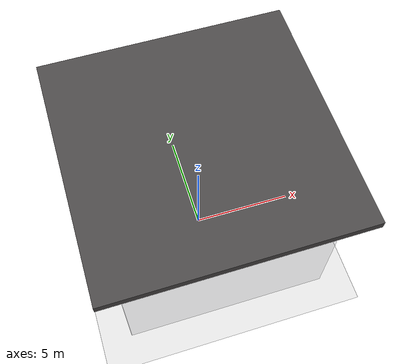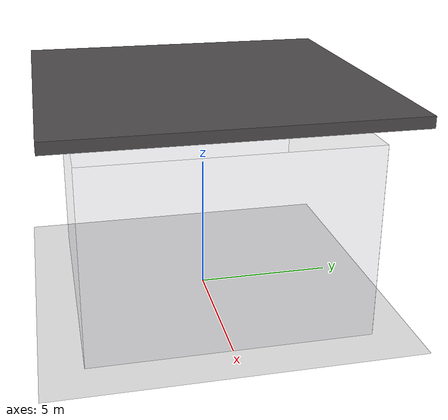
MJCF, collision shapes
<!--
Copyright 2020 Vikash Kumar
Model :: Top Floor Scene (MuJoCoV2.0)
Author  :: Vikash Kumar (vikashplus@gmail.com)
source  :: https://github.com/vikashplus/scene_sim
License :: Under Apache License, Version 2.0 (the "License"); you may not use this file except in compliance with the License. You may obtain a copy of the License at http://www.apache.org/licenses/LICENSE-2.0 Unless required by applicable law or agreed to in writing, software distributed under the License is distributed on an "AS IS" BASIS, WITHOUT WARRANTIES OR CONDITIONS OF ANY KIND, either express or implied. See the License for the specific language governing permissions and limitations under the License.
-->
<mujoco model="topflor scene">

  <asset>
    <texture name="skybox" type="skybox" builtin="gradient" rgb1=".08 .09 .10" rgb2="0 0 0" width="800" height="800" mark="random" markrgb=".8 .8 .8"/>
    <texture name="texplane" type="2d" height="1" width="1" file="../scene_sim/textures/white_marble_tile2.png"/>
    <material name="MatPlane" reflectance="0.01" texture="texplane" texrepeat="4 4" texuniform="true"/>
    <material name="MatMetal" reflectance="0" specular=".2" emission=".01" rgba=".31 .3 .3 1"/>
    <material name="MatGlass" reflectance="1" specular=".4" emission=".25" rgba=".6 .6 .65 .2"/>

    <mesh name="wall" file="../scene_sim/meshes/highwindow.stl" scale="1 1 1"/>
    <mesh name="skyline" file="../scene_sim/meshes/skyline.stl" scale="1 1 1"/>
  </asset>

  <compiler angle="radian"/>

  <statistic extent="3.5"/>

  <visual>
    <map fogstart="1.5" fogend="5" force="0.1" znear="0.01" shadowclip="2"/>
    <quality shadowsize="4096" offsamples="4"/>
  </visual>

  <default>
    <default class='scene'>
      <geom contype="0" conaffinity="0"/>
    </default>
  </default>

  <worldbody>
    <!-- indoor lights -->
    <light directional="false" castshadow="false" diffuse=".5 .5 .55" specular="0.3 0.3 0.6" pos="-4 -4 7" dir="1 1 -1"/>
    <light directional="false" castshadow="false" diffuse=".5 .5 .55" specular="0.3 0.3 0.6" pos="4 -4 7" dir="-1 1 -1"/>
    <light directional="false" castshadow="false" diffuse=".5 .5 .55" specular="0.3 0.3 0.6" pos="0 4 7" dir="0 -1 -1"/>

    <!-- floor, roof and outside -->
    <geom class='scene' name="skyline" mesh="skyline" pos="0 0 -5" type="mesh" rgba=".3 .3 .27 1"/>
    <geom class='scene' name="floor" pos="0 0 0.0001" size="6.5 6.5 .1" conaffinity="1" contype="1" type="plane" material="MatPlane" condim="3"/>
    <geom class='scene' name="roof" type="box" pos="0 0 8" size="6 6 .2" material="MatMetal"/>

    <!-- walls -->
    <geom class='scene' mesh="wall" pos="0 5 0" type="mesh" material="MatMetal"/>
    <geom class='scene' type="box" pos="0 5 3.5" size="5 .01 3.5" material="MatGlass"/>
    <geom class='scene' mesh="wall" pos="0 -5 0" type="mesh" material="MatMetal" euler="0 0 -3.14"/>
    <geom class='scene' type="box" pos="0 -5 3.5" size="5 .01 3.5" material="MatGlass"/>
    <geom class='scene' mesh="wall" pos="5 0 0" type="mesh" material="MatMetal" euler="0 0 -1.57"/>
    <geom class='scene' type="box" pos="5 0 3.5" size=".01 5 3.5" material="MatGlass"/>
    <geom class='scene' mesh="wall" pos="-5 0 0" type="mesh" material="MatMetal" euler="0 0 1.57"/>
    <geom class='scene' type="box" pos="-5 0 3.5" size=".01 5 3.5" material="MatGlass"/>

    <!-- co-ordinate axis -->
    <site name="xaxis" fromto="0 0 0 1 0 0" size=".005" type="capsule" rgba="1 0 0 .25" group="3"/>
    <site name="yaxis" fromto="0 0 0 0 1 0" size=".005" type="capsule" rgba="0 1 0 .25" group="3"/>
  </worldbody>

</mujoco>
